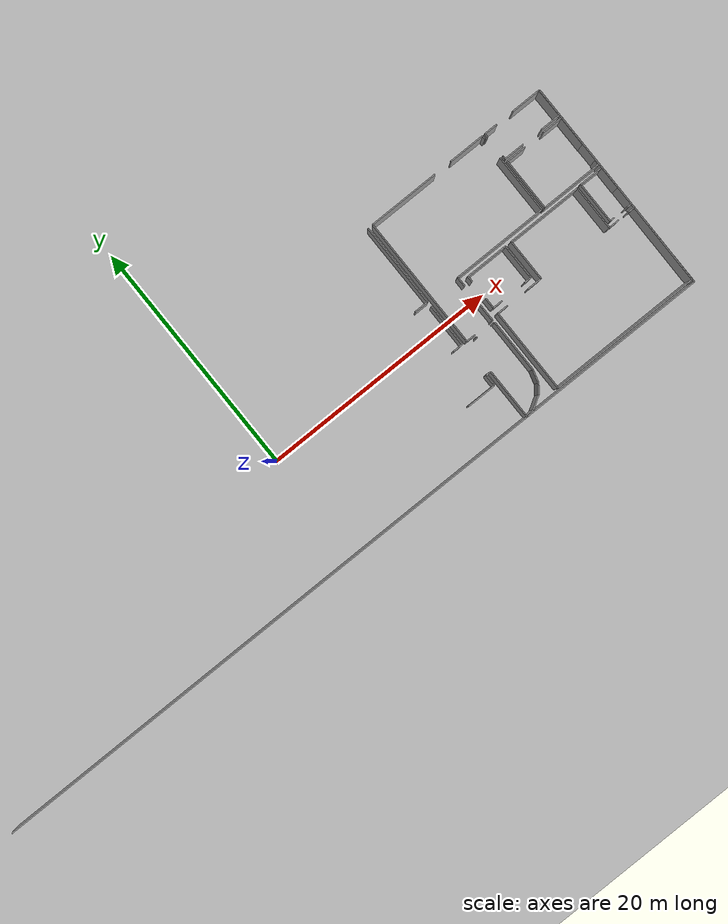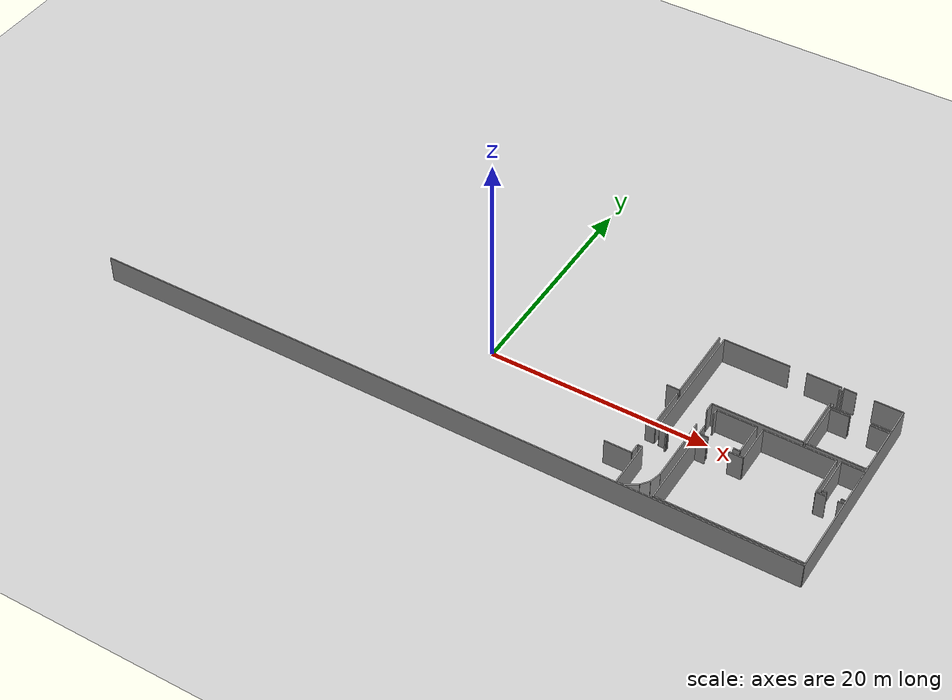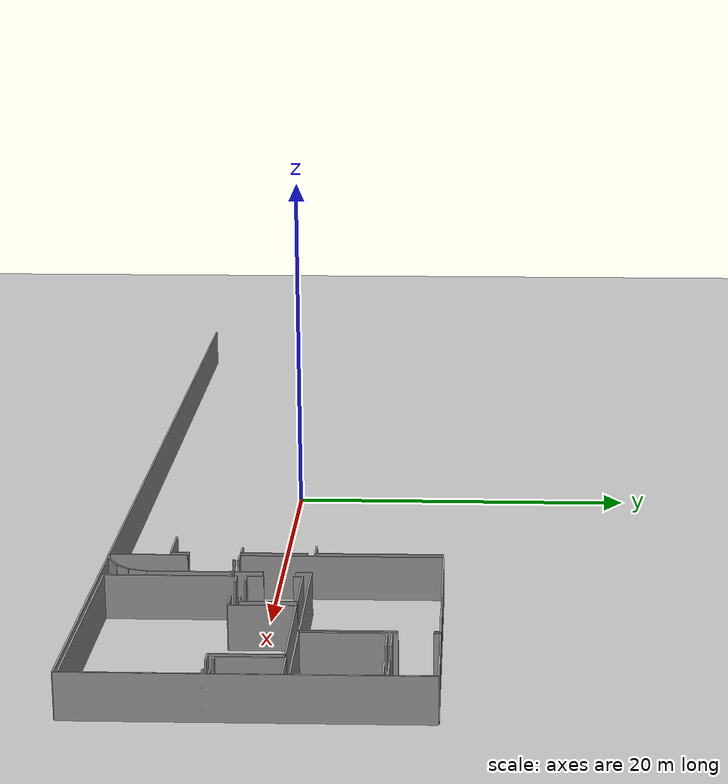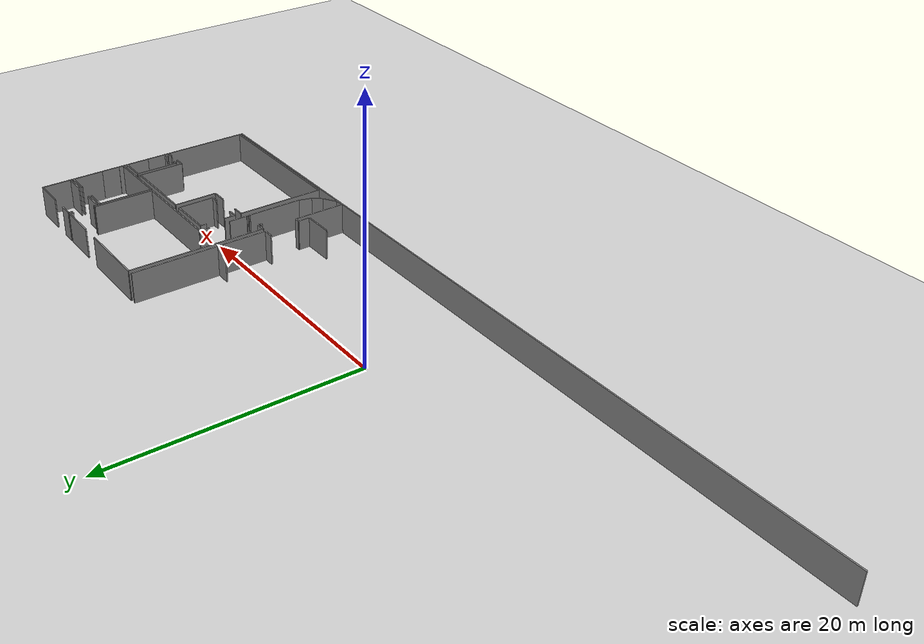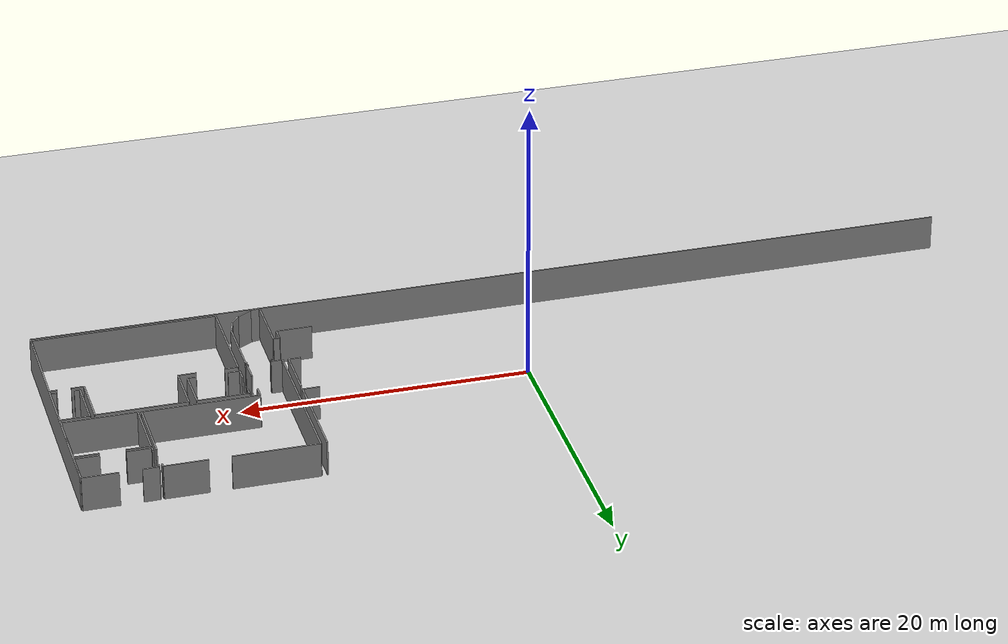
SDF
<sdf version="1.6">
 <world name="default">
  <model name="ground_plane">
   <static>1</static>
   <link name="link">
    <collision name="collision">
     <geometry><plane><normal>0 0 1</normal><size>100 100</size></plane></geometry>
     <surface><friction><ode><mu>100</mu><mu2>50</mu2></ode></friction></surface>
    </collision>
    <visual name="visual">
     <cast_shadows>0</cast_shadows>
     <geometry><plane><normal>0 0 1</normal><size>100 100</size></plane></geometry>
     <material>
      <script><uri>file://media/materials/scripts/gazebo.material</uri><name>Gazebo/Grey</name></script>
     </material>
    </visual>
   </link>
  </model>
  <model name="0510034839_A-40">
   <static>1</static>
   <link name="Wall_76">
    <collision name="Wall_76_Collision">
     <geometry><box><size>0.828065097621 0.1 2.5</size></box></geometry>
     <pose>0.414032548811 0 1.25 0 0 0</pose>
    </collision>
    <visual name="Wall_76_Visual">
     <pose>0.414032548811 0 1.25 0 0 0</pose>
     <geometry><box><size>0.828065097621 0.1 2.5</size></box></geometry>
     <material>
      <script><uri>file://media/materials/scripts/gazebo.material</uri><name>Gazebo/Grey</name></script>
      <ambient>1 1 1 1</ambient>
     </material>
    </visual>
    <pose>48.7299108843 -11.0799248483 0 0 0 3.14159265359</pose>
   </link>
   <link name="Wall_101">
    <collision name="Wall_101_Collision">
     <geometry><box><size>3.65323782427 0.1 2.5</size></box></geometry>
     <pose>1.82661891214 0 1.25 0 0 0</pose>
    </collision>
    <visual name="Wall_101_Visual">
     <pose>1.82661891214 0 1.25 0 0 0</pose>
     <geometry><box><size>3.65323782427 0.1 2.5</size></box></geometry>
     <material>
      <script><uri>file://media/materials/scripts/gazebo.material</uri><name>Gazebo/Grey</name></script>
      <ambient>1 1 1 1</ambient>
     </material>
    </visual>
    <pose>48.7337192475 -7.42668900906 0 0 0 -1.57183878941</pose>
   </link>
   <link name="Wall_139">
    <collision name="Wall_139_Collision">
     <geometry><box><size>1.16142382004 0.1 2.5</size></box></geometry>
     <pose>0.580711910021 0 1.25 0 0 0</pose>
    </collision>
    <visual name="Wall_139_Visual">
     <pose>0.580711910021 0 1.25 0 0 0</pose>
     <geometry><box><size>1.16142382004 0.1 2.5</size></box></geometry>
     <material>
      <script><uri>file://media/materials/scripts/gazebo.material</uri><name>Gazebo/Grey</name></script>
      <ambient>1 1 1 1</ambient>
     </material>
    </visual>
    <pose>48.7202630309 -7.01005407876 0 0 0 3.14159265359</pose>
   </link>
   <link name="Wall_143">
    <collision name="Wall_143_Collision">
     <geometry><box><size>7.00333039315 0.1 2.5</size></box></geometry>
     <pose>3.50166519658 0 1.25 0 0 0</pose>
    </collision>
    <visual name="Wall_143_Visual">
     <pose>3.50166519658 0 1.25 0 0 0</pose>
     <geometry><box><size>7.00333039315 0.1 2.5</size></box></geometry>
     <material>
      <script><uri>file://media/materials/scripts/gazebo.material</uri><name>Gazebo/Grey</name></script>
      <ambient>1 1 1 1</ambient>
     </material>
    </visual>
    <pose>48.7123924137 -0.00672810825908 0 0 0 -1.56967248736</pose>
   </link>
   <link name="Wall_184">
    <collision name="Wall_184_Collision">
     <geometry><box><size>4.30027674106 0.1 2.5</size></box></geometry>
     <pose>2.15013837053 0 1.25 0 0 0</pose>
    </collision>
    <visual name="Wall_184_Visual">
     <pose>2.15013837053 0 1.25 0 0 0</pose>
     <geometry><box><size>4.30027674106 0.1 2.5</size></box></geometry>
     <material>
      <script><uri>file://media/materials/scripts/gazebo.material</uri><name>Gazebo/Grey</name></script>
      <ambient>1 1 1 1</ambient>
     </material>
    </visual>
    <pose>49.1137938914 -18.2791276309 0 0 0 1.57079632679</pose>
   </link>
   <link name="Wall_185">
    <collision name="Wall_185_Collision">
     <geometry><box><size>0.422347475055 0.1 2.5</size></box></geometry>
     <pose>0.211173737528 0 1.25 0 0 0</pose>
    </collision>
    <visual name="Wall_185_Visual">
     <pose>0.211173737528 0 1.25 0 0 0</pose>
     <geometry><box><size>0.422347475055 0.1 2.5</size></box></geometry>
     <material>
      <script><uri>file://media/materials/scripts/gazebo.material</uri><name>Gazebo/Grey</name></script>
      <ambient>1 1 1 1</ambient>
     </material>
    </visual>
    <pose>49.1137938914 -13.9788508899 0 0 0 3.14159265359</pose>
   </link>
   <link name="Wall_186">
    <collision name="Wall_186_Collision">
     <geometry><box><size>0.9694823165 0.1 2.5</size></box></geometry>
     <pose>0.48474115825 0 1.25 0 0 0</pose>
    </collision>
    <visual name="Wall_186_Visual">
     <pose>0.48474115825 0 1.25 0 0 0</pose>
     <geometry><box><size>0.9694823165 0.1 2.5</size></box></geometry>
     <material>
      <script><uri>file://media/materials/scripts/gazebo.material</uri><name>Gazebo/Grey</name></script>
      <ambient>1 1 1 1</ambient>
     </material>
    </visual>
    <pose>48.6914464163 -13.9788508899 0 0 0 -1.57079632679</pose>
   </link>
   <link name="Wall_187">
    <collision name="Wall_187_Collision">
     <geometry><box><size>2.45728285983 0.1 2.5</size></box></geometry>
     <pose>1.22864142991 0 1.25 0 0 0</pose>
    </collision>
    <visual name="Wall_187_Visual">
     <pose>1.22864142991 0 1.25 0 0 0</pose>
     <geometry><box><size>2.45728285983 0.1 2.5</size></box></geometry>
     <material>
      <script><uri>file://media/materials/scripts/gazebo.material</uri><name>Gazebo/Grey</name></script>
      <ambient>1 1 1 1</ambient>
     </material>
    </visual>
    <pose>48.6914464163 -14.9483332064 0 0 0 3.14159265359</pose>
   </link>
   <link name="Wall_193">
    <collision name="Wall_193_Collision">
     <geometry><box><size>0.115266458476 0.1 2.5</size></box></geometry>
     <pose>0.0576332292381 0 1.25 0 0 0</pose>
    </collision>
    <visual name="Wall_193_Visual">
     <pose>0.0576332292381 0 1.25 0 0 0</pose>
     <geometry><box><size>0.115266458476 0.1 2.5</size></box></geometry>
     <material>
      <script><uri>file://media/materials/scripts/gazebo.material</uri><name>Gazebo/Grey</name></script>
      <ambient>1 1 1 1</ambient>
     </material>
    </visual>
    <pose>49.8381445655 -11.4366415315 0 0 0 1.57079632679</pose>
   </link>
   <link name="Wall_194">
    <collision name="Wall_194_Collision">
     <geometry><box><size>0.115266458476 0.1 2.5</size></box></geometry>
     <pose>0.0576332292381 0 1.25 0 0 0</pose>
    </collision>
    <visual name="Wall_194_Visual">
     <pose>0.0576332292381 0 1.25 0 0 0</pose>
     <geometry><box><size>0.115266458476 0.1 2.5</size></box></geometry>
     <material>
      <script><uri>file://media/materials/scripts/gazebo.material</uri><name>Gazebo/Grey</name></script>
      <ambient>1 1 1 1</ambient>
     </material>
    </visual>
    <pose>49.8381445655 -11.321375073 0 0 0 0.0</pose>
   </link>
   <link name="Wall_195">
    <collision name="Wall_195_Collision">
     <geometry><box><size>0.12148678498 0.1 2.5</size></box></geometry>
     <pose>0.0607433924899 0 1.25 0 0 0</pose>
    </collision>
    <visual name="Wall_195_Visual">
     <pose>0.0607433924899 0 1.25 0 0 0</pose>
     <geometry><box><size>0.12148678498 0.1 2.5</size></box></geometry>
     <material>
      <script><uri>file://media/materials/scripts/gazebo.material</uri><name>Gazebo/Grey</name></script>
      <ambient>1 1 1 1</ambient>
     </material>
    </visual>
    <pose>51.515474649 -11.321375073 0 0 0 0.0</pose>
   </link>
   <link name="Wall_196">
    <collision name="Wall_196_Collision">
     <geometry><box><size>4.48599791809 0.1 2.5</size></box></geometry>
     <pose>2.24299895905 0 1.25 0 0 0</pose>
    </collision>
    <visual name="Wall_196_Visual">
     <pose>2.24299895905 0 1.25 0 0 0</pose>
     <geometry><box><size>4.48599791809 0.1 2.5</size></box></geometry>
     <material>
      <script><uri>file://media/materials/scripts/gazebo.material</uri><name>Gazebo/Grey</name></script>
      <ambient>1 1 1 1</ambient>
     </material>
    </visual>
    <pose>51.636961434 -11.321375073 0 0 0 -1.57079632679</pose>
   </link>
   <link name="Wall_197">
    <collision name="Wall_197_Collision">
     <geometry><box><size>1.06597658014 0.1 2.5</size></box></geometry>
     <pose>0.53298829007 0 1.25 0 0 0</pose>
    </collision>
    <visual name="Wall_197_Visual">
     <pose>0.53298829007 0 1.25 0 0 0</pose>
     <geometry><box><size>1.06597658014 0.1 2.5</size></box></geometry>
     <material>
      <script><uri>file://media/materials/scripts/gazebo.material</uri><name>Gazebo/Grey</name></script>
      <ambient>1 1 1 1</ambient>
     </material>
    </visual>
    <pose>51.636961434 -15.8073729911 0 0 0 -1.84341971233</pose>
   </link>
   <link name="Wall_198">
    <collision name="Wall_198_Collision">
     <geometry><box><size>0.896611060383 0.1 2.5</size></box></geometry>
     <pose>0.448305530191 0 1.25 0 0 0</pose>
    </collision>
    <visual name="Wall_198_Visual">
     <pose>0.448305530191 0 1.25 0 0 0</pose>
     <geometry><box><size>0.896611060383 0.1 2.5</size></box></geometry>
     <material>
      <script><uri>file://media/materials/scripts/gazebo.material</uri><name>Gazebo/Grey</name></script>
      <ambient>1 1 1 1</ambient>
     </material>
    </visual>
    <pose>51.3499377967 -16.8339807551 0 0 0 -2.23395050704</pose>
   </link>
   <link name="Wall_199">
    <collision name="Wall_199_Collision">
     <geometry><box><size>1.20405259335 0.1 2.5</size></box></geometry>
     <pose>0.602026296676 0 1.25 0 0 0</pose>
    </collision>
    <visual name="Wall_199_Visual">
     <pose>0.602026296676 0 1.25 0 0 0</pose>
     <geometry><box><size>1.20405259335 0.1 2.5</size></box></geometry>
     <material>
      <script><uri>file://media/materials/scripts/gazebo.material</uri><name>Gazebo/Grey</name></script>
      <ambient>1 1 1 1</ambient>
     </material>
    </visual>
    <pose>50.7979790286 -17.5405590677 0 0 0 -2.59178876614</pose>
   </link>
   <link name="Wall_200">
    <collision name="Wall_200_Collision">
     <geometry><box><size>0.666620029097 0.1 2.5</size></box></geometry>
     <pose>0.333310014548 0 1.25 0 0 0</pose>
    </collision>
    <visual name="Wall_200_Visual">
     <pose>0.333310014548 0 1.25 0 0 0</pose>
     <geometry><box><size>0.666620029097 0.1 2.5</size></box></geometry>
     <material>
      <script><uri>file://media/materials/scripts/gazebo.material</uri><name>Gazebo/Grey</name></script>
      <ambient>1 1 1 1</ambient>
     </material>
    </visual>
    <pose>49.7713712646 -18.1697006627 0 0 0 -2.97669443012</pose>
   </link>
   <link name="Wall_201">
    <collision name="Wall_201_Collision">
     <geometry><box><size>0.114250894965 0.1 2.5</size></box></geometry>
     <pose>0.0571254474827 0 1.25 0 0 0</pose>
    </collision>
    <visual name="Wall_201_Visual">
     <pose>0.0571254474827 0 1.25 0 0 0</pose>
     <geometry><box><size>0.114250894965 0.1 2.5</size></box></geometry>
     <material>
      <script><uri>file://media/materials/scripts/gazebo.material</uri><name>Gazebo/Grey</name></script>
      <ambient>1 1 1 1</ambient>
     </material>
    </visual>
    <pose>51.6137304187 -11.1176276436 0 0 0 3.14159265359</pose>
   </link>
   <link name="Wall_202">
    <collision name="Wall_202_Collision">
     <geometry><box><size>0.792901211059 0.1 2.5</size></box></geometry>
     <pose>0.39645060553 0 1.25 0 0 0</pose>
    </collision>
    <visual name="Wall_202_Visual">
     <pose>0.39645060553 0 1.25 0 0 0</pose>
     <geometry><box><size>0.792901211059 0.1 2.5</size></box></geometry>
     <material>
      <script><uri>file://media/materials/scripts/gazebo.material</uri><name>Gazebo/Grey</name></script>
      <ambient>1 1 1 1</ambient>
     </material>
    </visual>
    <pose>49.9393200802 -11.1176276436 0 0 0 3.14159265359</pose>
   </link>
   <link name="Wall_203">
    <collision name="Wall_203_Collision">
     <geometry><box><size>11.1176276436 0.1 2.5</size></box></geometry>
     <pose>5.55881382182 0 1.25 0 0 0</pose>
    </collision>
    <visual name="Wall_203_Visual">
     <pose>5.55881382182 0 1.25 0 0 0</pose>
     <geometry><box><size>11.1176276436 0.1 2.5</size></box></geometry>
     <material>
      <script><uri>file://media/materials/scripts/gazebo.material</uri><name>Gazebo/Grey</name></script>
      <ambient>1 1 1 1</ambient>
     </material>
    </visual>
    <pose>49.1464188692 -11.1176276436 0 0 0 1.57079632679</pose>
   </link>
   <link name="Wall_204">
    <collision name="Wall_204_Collision">
     <geometry><box><size>5.93152563028 0.1 2.5</size></box></geometry>
     <pose>2.96576281514 0 1.25 0 0 0</pose>
    </collision>
    <visual name="Wall_204_Visual">
     <pose>2.96576281514 0 1.25 0 0 0</pose>
     <geometry><box><size>5.93152563028 0.1 2.5</size></box></geometry>
     <material>
      <script><uri>file://media/materials/scripts/gazebo.material</uri><name>Gazebo/Grey</name></script>
      <ambient>1 1 1 1</ambient>
     </material>
    </visual>
    <pose>49.1464188692 -0.0 0 0 0 0.0</pose>
   </link>
   <link name="Wall_205">
    <collision name="Wall_205_Collision">
     <geometry><box><size>3.01622362709 0.1 2.5</size></box></geometry>
     <pose>1.50811181354 0 1.25 0 0 0</pose>
    </collision>
    <visual name="Wall_205_Visual">
     <pose>1.50811181354 0 1.25 0 0 0</pose>
     <geometry><box><size>3.01622362709 0.1 2.5</size></box></geometry>
     <material>
      <script><uri>file://media/materials/scripts/gazebo.material</uri><name>Gazebo/Grey</name></script>
      <ambient>1 1 1 1</ambient>
     </material>
    </visual>
    <pose>56.6002742021 -0.0 0 0 0 0.0</pose>
   </link>
   <link name="Wall_206">
    <collision name="Wall_206_Collision">
     <geometry><box><size>0.320918069414 0.1 2.5</size></box></geometry>
     <pose>0.160459034707 0 1.25 0 0 0</pose>
    </collision>
    <visual name="Wall_206_Visual">
     <pose>0.160459034707 0 1.25 0 0 0</pose>
     <geometry><box><size>0.320918069414 0.1 2.5</size></box></geometry>
     <material>
      <script><uri>file://media/materials/scripts/gazebo.material</uri><name>Gazebo/Grey</name></script>
      <ambient>1 1 1 1</ambient>
     </material>
    </visual>
    <pose>59.6164978292 -0.0 0 0 0 -1.57079632679</pose>
   </link>
   <link name="Wall_207">
    <collision name="Wall_207_Collision">
     <geometry><box><size>4.93043389951 0.1 2.5</size></box></geometry>
     <pose>2.46521694975 0 1.25 0 0 0</pose>
    </collision>
    <visual name="Wall_207_Visual">
     <pose>2.46521694975 0 1.25 0 0 0</pose>
     <geometry><box><size>4.93043389951 0.1 2.5</size></box></geometry>
     <material>
      <script><uri>file://media/materials/scripts/gazebo.material</uri><name>Gazebo/Grey</name></script>
      <ambient>1 1 1 1</ambient>
     </material>
    </visual>
    <pose>59.6164978292 -2.07962017925 0 0 0 -1.57079632679</pose>
   </link>
   <link name="Wall_208">
    <collision name="Wall_208_Collision">
     <geometry><box><size>8.0166044634 0.1 2.5</size></box></geometry>
     <pose>4.0083022317 0 1.25 0 0 0</pose>
    </collision>
    <visual name="Wall_208_Visual">
     <pose>4.0083022317 0 1.25 0 0 0</pose>
     <geometry><box><size>8.0166044634 0.1 2.5</size></box></geometry>
     <material>
      <script><uri>file://media/materials/scripts/gazebo.material</uri><name>Gazebo/Grey</name></script>
      <ambient>1 1 1 1</ambient>
     </material>
    </visual>
    <pose>59.6164978292 -7.01005407876 0 0 0 3.14159265359</pose>
   </link>
   <link name="Wall_209">
    <collision name="Wall_209_Collision">
     <geometry><box><size>0.835047096758 0.1 2.5</size></box></geometry>
     <pose>0.417523548379 0 1.25 0 0 0</pose>
    </collision>
    <visual name="Wall_209_Visual">
     <pose>0.417523548379 0 1.25 0 0 0</pose>
     <geometry><box><size>0.835047096758 0.1 2.5</size></box></geometry>
     <material>
      <script><uri>file://media/materials/scripts/gazebo.material</uri><name>Gazebo/Grey</name></script>
      <ambient>1 1 1 1</ambient>
     </material>
    </visual>
    <pose>51.5998933658 -7.01005407876 0 0 0 -1.57079632679</pose>
   </link>
   <link name="Wall_210">
    <collision name="Wall_210_Collision">
     <geometry><box><size>1.52340810819 0.1 2.5</size></box></geometry>
     <pose>0.761704054095 0 1.25 0 0 0</pose>
    </collision>
    <visual name="Wall_210_Visual">
     <pose>0.761704054095 0 1.25 0 0 0</pose>
     <geometry><box><size>1.52340810819 0.1 2.5</size></box></geometry>
     <material>
      <script><uri>file://media/materials/scripts/gazebo.material</uri><name>Gazebo/Grey</name></script>
      <ambient>1 1 1 1</ambient>
     </material>
    </visual>
    <pose>51.5998933658 -9.59428237743 0 0 0 -1.56171324326</pose>
   </link>
   <link name="Wall_211">
    <collision name="Wall_211_Collision">
     <geometry><box><size>1.71109757026 0.1 2.5</size></box></geometry>
     <pose>0.855548785132 0 1.25 0 0 0</pose>
    </collision>
    <visual name="Wall_211_Visual">
     <pose>0.855548785132 0 1.25 0 0 0</pose>
     <geometry><box><size>1.71109757026 0.1 2.5</size></box></geometry>
     <material>
      <script><uri>file://media/materials/scripts/gazebo.material</uri><name>Gazebo/Grey</name></script>
      <ambient>1 1 1 1</ambient>
     </material>
    </visual>
    <pose>65.0220885064 -2.3892401046 0 0 0 3.14159265359</pose>
   </link>
   <link name="Wall_212">
    <collision name="Wall_212_Collision">
     <geometry><box><size>1.7027191713 0.1 2.5</size></box></geometry>
     <pose>0.85135958565 0 1.25 0 0 0</pose>
    </collision>
    <visual name="Wall_212_Visual">
     <pose>0.85135958565 0 1.25 0 0 0</pose>
     <geometry><box><size>1.7027191713 0.1 2.5</size></box></geometry>
     <material>
      <script><uri>file://media/materials/scripts/gazebo.material</uri><name>Gazebo/Grey</name></script>
      <ambient>1 1 1 1</ambient>
     </material>
    </visual>
    <pose>61.5581283164 -2.3892401046 0 0 0 3.14159265359</pose>
   </link>
   <link name="Wall_213">
    <collision name="Wall_213_Collision">
     <geometry><box><size>0.300479853759 0.1 2.5</size></box></geometry>
     <pose>0.150239926879 0 1.25 0 0 0</pose>
    </collision>
    <visual name="Wall_213_Visual">
     <pose>0.150239926879 0 1.25 0 0 0</pose>
     <geometry><box><size>0.300479853759 0.1 2.5</size></box></geometry>
     <material>
      <script><uri>file://media/materials/scripts/gazebo.material</uri><name>Gazebo/Grey</name></script>
      <ambient>1 1 1 1</ambient>
     </material>
    </visual>
    <pose>59.8554091451 -2.3892401046 0 0 0 1.57079632679</pose>
   </link>
   <link name="Wall_214">
    <collision name="Wall_214_Collision">
     <geometry><box><size>0.325488105212 0.1 2.5</size></box></geometry>
     <pose>0.162744052606 0 1.25 0 0 0</pose>
    </collision>
    <visual name="Wall_214_Visual">
     <pose>0.162744052606 0 1.25 0 0 0</pose>
     <geometry><box><size>0.325488105212 0.1 2.5</size></box></geometry>
     <material>
      <script><uri>file://media/materials/scripts/gazebo.material</uri><name>Gazebo/Grey</name></script>
      <ambient>1 1 1 1</ambient>
     </material>
    </visual>
    <pose>59.8554091451 -0.327519232234 0 0 0 1.57079632679</pose>
   </link>
   <link name="Wall_215">
    <collision name="Wall_215_Collision">
     <geometry><box><size>1.11851626171 0.1 2.5</size></box></geometry>
     <pose>0.559258130855 0 1.25 0 0 0</pose>
    </collision>
    <visual name="Wall_215_Visual">
     <pose>0.559258130855 0 1.25 0 0 0</pose>
     <geometry><box><size>1.11851626171 0.1 2.5</size></box></geometry>
     <material>
      <script><uri>file://media/materials/scripts/gazebo.material</uri><name>Gazebo/Grey</name></script>
      <ambient>1 1 1 1</ambient>
     </material>
    </visual>
    <pose>59.8554091451 -0.00203112702161 0 0 0 0.0</pose>
   </link>
   <link name="Wall_216">
    <collision name="Wall_216_Collision">
     <geometry><box><size>2.50450656308 0.1 2.5</size></box></geometry>
     <pose>1.25225328154 0 1.25 0 0 0</pose>
    </collision>
    <visual name="Wall_216_Visual">
     <pose>1.25225328154 0 1.25 0 0 0</pose>
     <geometry><box><size>2.50450656308 0.1 2.5</size></box></geometry>
     <material>
      <script><uri>file://media/materials/scripts/gazebo.material</uri><name>Gazebo/Grey</name></script>
      <ambient>1 1 1 1</ambient>
     </material>
    </visual>
    <pose>62.5013329271 -0.00203112702161 0 0 0 0.0</pose>
   </link>
   <link name="Wall_217">
    <collision name="Wall_217_Collision">
     <geometry><box><size>2.38726427803 0.1 2.5</size></box></geometry>
     <pose>1.19363213902 0 1.25 0 0 0</pose>
    </collision>
    <visual name="Wall_217_Visual">
     <pose>1.19363213902 0 1.25 0 0 0</pose>
     <geometry><box><size>2.38726427803 0.1 2.5</size></box></geometry>
     <material>
      <script><uri>file://media/materials/scripts/gazebo.material</uri><name>Gazebo/Grey</name></script>
      <ambient>1 1 1 1</ambient>
     </material>
    </visual>
    <pose>65.0058394902 -0.00203112702161 0 0 0 -1.56398973157</pose>
   </link>
   <link name="Wall_218">
    <collision name="Wall_218_Collision">
     <geometry><box><size>5.1241526392 0.1 2.5</size></box></geometry>
     <pose>2.5620763196 0 1.25 0 0 0</pose>
    </collision>
    <visual name="Wall_218_Visual">
     <pose>2.5620763196 0 1.25 0 0 0</pose>
     <geometry><box><size>5.1241526392 0.1 2.5</size></box></geometry>
     <material>
      <script><uri>file://media/materials/scripts/gazebo.material</uri><name>Gazebo/Grey</name></script>
      <ambient>1 1 1 1</ambient>
     </material>
    </visual>
    <pose>64.9861629472 -7.04331378374 0 0 0 3.14159265359</pose>
   </link>
   <link name="Wall_219">
    <collision name="Wall_219_Collision">
     <geometry><box><size>4.40881509127 0.1 2.5</size></box></geometry>
     <pose>2.20440754564 0 1.25 0 0 0</pose>
    </collision>
    <visual name="Wall_219_Visual">
     <pose>2.20440754564 0 1.25 0 0 0</pose>
     <geometry><box><size>4.40881509127 0.1 2.5</size></box></geometry>
     <material>
      <script><uri>file://media/materials/scripts/gazebo.material</uri><name>Gazebo/Grey</name></script>
      <ambient>1 1 1 1</ambient>
     </material>
    </visual>
    <pose>59.862010308 -7.04331378374 0 0 0 1.57079632679</pose>
   </link>
   <link name="Wall_220">
    <collision name="Wall_220_Collision">
     <geometry><box><size>1.68786655495 0.1 2.5</size></box></geometry>
     <pose>0.843933277477 0 1.25 0 0 0</pose>
    </collision>
    <visual name="Wall_220_Visual">
     <pose>0.843933277477 0 1.25 0 0 0</pose>
     <geometry><box><size>1.68786655495 0.1 2.5</size></box></geometry>
     <material>
      <script><uri>file://media/materials/scripts/gazebo.material</uri><name>Gazebo/Grey</name></script>
      <ambient>1 1 1 1</ambient>
     </material>
    </visual>
    <pose>59.862010308 -2.63449869246 0 0 0 0.0</pose>
   </link>
   <link name="Wall_221">
    <collision name="Wall_221_Collision">
     <geometry><box><size>1.71947596923 0.1 2.5</size></box></geometry>
     <pose>0.859737984614 0 1.25 0 0 0</pose>
    </collision>
    <visual name="Wall_221_Visual">
     <pose>0.859737984614 0 1.25 0 0 0</pose>
     <geometry><box><size>1.71947596923 0.1 2.5</size></box></geometry>
     <material>
      <script><uri>file://media/materials/scripts/gazebo.material</uri><name>Gazebo/Grey</name></script>
      <ambient>1 1 1 1</ambient>
     </material>
    </visual>
    <pose>63.2943610836 -2.63449869246 0 0 0 0.0</pose>
   </link>
   <link name="Wall_222">
    <collision name="Wall_222_Collision">
     <geometry><box><size>2.50374489045 0.1 2.5</size></box></geometry>
     <pose>1.25187244522 0 1.25 0 0 0</pose>
    </collision>
    <visual name="Wall_222_Visual">
     <pose>1.25187244522 0 1.25 0 0 0</pose>
     <geometry><box><size>2.50374489045 0.1 2.5</size></box></geometry>
     <material>
      <script><uri>file://media/materials/scripts/gazebo.material</uri><name>Gazebo/Grey</name></script>
      <ambient>1 1 1 1</ambient>
     </material>
    </visual>
    <pose>65.0138370528 -2.63449869246 0 0 0 -1.57079632679</pose>
   </link>
   <link name="Wall_223">
    <collision name="Wall_223_Collision">
     <geometry><box><size>0.398934984223 0.1 2.5</size></box></geometry>
     <pose>0.199467492111 0 1.25 0 0 0</pose>
    </collision>
    <visual name="Wall_223_Visual">
     <pose>0.199467492111 0 1.25 0 0 0</pose>
     <geometry><box><size>0.398934984223 0.1 2.5</size></box></geometry>
     <material>
      <script><uri>file://media/materials/scripts/gazebo.material</uri><name>Gazebo/Grey</name></script>
      <ambient>1 1 1 1</ambient>
     </material>
    </visual>
    <pose>65.0138370528 -6.64533983294 0 0 0 -1.64022204899</pose>
   </link>
   <link name="Wall_224">
    <collision name="Wall_224_Collision">
     <geometry><box><size>0.595120217331 0.1 2.5</size></box></geometry>
     <pose>0.297560108665 0 1.25 0 0 0</pose>
    </collision>
    <visual name="Wall_224_Visual">
     <pose>0.297560108665 0 1.25 0 0 0</pose>
     <geometry><box><size>0.595120217331 0.1 2.5</size></box></geometry>
     <material>
      <script><uri>file://media/materials/scripts/gazebo.material</uri><name>Gazebo/Grey</name></script>
      <ambient>1 1 1 1</ambient>
     </material>
    </visual>
    <pose>55.8151166629 -10.4265366745 0 0 0 3.14159265359</pose>
   </link>
   <link name="Wall_225">
    <collision name="Wall_225_Collision">
     <geometry><box><size>0.812450808642 0.1 2.5</size></box></geometry>
     <pose>0.406225404321 0 1.25 0 0 0</pose>
    </collision>
    <visual name="Wall_225_Visual">
     <pose>0.406225404321 0 1.25 0 0 0</pose>
     <geometry><box><size>0.812450808642 0.1 2.5</size></box></geometry>
     <material>
      <script><uri>file://media/materials/scripts/gazebo.material</uri><name>Gazebo/Grey</name></script>
      <ambient>1 1 1 1</ambient>
     </material>
    </visual>
    <pose>53.0482138777 -10.4265366745 0 0 0 3.14159265359</pose>
   </link>
   <link name="Wall_226">
    <collision name="Wall_226_Collision">
     <geometry><box><size>0.921116104298 0.1 2.5</size></box></geometry>
     <pose>0.460558052149 0 1.25 0 0 0</pose>
    </collision>
    <visual name="Wall_226_Visual">
     <pose>0.460558052149 0 1.25 0 0 0</pose>
     <geometry><box><size>0.921116104298 0.1 2.5</size></box></geometry>
     <material>
      <script><uri>file://media/materials/scripts/gazebo.material</uri><name>Gazebo/Grey</name></script>
      <ambient>1 1 1 1</ambient>
     </material>
    </visual>
    <pose>52.235763069 -10.4265366745 0 0 0 1.57079632679</pose>
   </link>
   <link name="Wall_227">
    <collision name="Wall_227_Collision">
     <geometry><box><size>0.500799756265 0.1 2.5</size></box></geometry>
     <pose>0.250399878132 0 1.25 0 0 0</pose>
    </collision>
    <visual name="Wall_227_Visual">
     <pose>0.250399878132 0 1.25 0 0 0</pose>
     <geometry><box><size>0.500799756265 0.1 2.5</size></box></geometry>
     <material>
      <script><uri>file://media/materials/scripts/gazebo.material</uri><name>Gazebo/Grey</name></script>
      <ambient>1 1 1 1</ambient>
     </material>
    </visual>
    <pose>52.235763069 -7.93155101937 0 0 0 1.57079632679</pose>
   </link>
   <link name="Wall_228">
    <collision name="Wall_228_Collision">
     <geometry><box><size>3.56310457765 0.1 2.5</size></box></geometry>
     <pose>1.78155228883 0 1.25 0 0 0</pose>
    </collision>
    <visual name="Wall_228_Visual">
     <pose>1.78155228883 0 1.25 0 0 0</pose>
     <geometry><box><size>3.56310457765 0.1 2.5</size></box></geometry>
     <material>
      <script><uri>file://media/materials/scripts/gazebo.material</uri><name>Gazebo/Grey</name></script>
      <ambient>1 1 1 1</ambient>
     </material>
    </visual>
    <pose>52.235763069 -7.43075126311 0 0 0 0.0</pose>
   </link>
   <link name="Wall_229">
    <collision name="Wall_229_Collision">
     <geometry><box><size>2.9958294781 0.1 2.5</size></box></geometry>
     <pose>1.49791473905 0 1.25 0 0 0</pose>
    </collision>
    <visual name="Wall_229_Visual">
     <pose>1.49791473905 0 1.25 0 0 0</pose>
     <geometry><box><size>2.9958294781 0.1 2.5</size></box></geometry>
     <material>
      <script><uri>file://media/materials/scripts/gazebo.material</uri><name>Gazebo/Grey</name></script>
      <ambient>1 1 1 1</ambient>
     </material>
    </visual>
    <pose>55.7988676467 -7.43075126311 0 0 0 -1.56537242134</pose>
   </link>
   <link name="Wall_230">
    <collision name="Wall_230_Collision">
     <geometry><box><size>12.7834056922 0.1 2.5</size></box></geometry>
     <pose>6.39170284612 0 1.25 0 0 0</pose>
    </collision>
    <visual name="Wall_230_Visual">
     <pose>6.39170284612 0 1.25 0 0 0</pose>
     <geometry><box><size>12.7834056922 0.1 2.5</size></box></geometry>
     <material>
      <script><uri>file://media/materials/scripts/gazebo.material</uri><name>Gazebo/Grey</name></script>
      <ambient>1 1 1 1</ambient>
     </material>
    </visual>
    <pose>65.0191687613 -18.0488486049 0 0 0 3.14159265359</pose>
   </link>
   <link name="Wall_231">
    <collision name="Wall_231_Collision">
     <geometry><box><size>7.09625003174 0.1 2.5</size></box></geometry>
     <pose>3.54812501587 0 1.25 0 0 0</pose>
    </collision>
    <visual name="Wall_231_Visual">
     <pose>3.54812501587 0 1.25 0 0 0</pose>
     <geometry><box><size>7.09625003174 0.1 2.5</size></box></geometry>
     <material>
      <script><uri>file://media/materials/scripts/gazebo.material</uri><name>Gazebo/Grey</name></script>
      <ambient>1 1 1 1</ambient>
     </material>
    </visual>
    <pose>52.235763069 -18.0488486049 0 0 0 1.57079632679</pose>
   </link>
   <link name="Wall_232">
    <collision name="Wall_232_Collision">
     <geometry><box><size>0.926701703608 0.1 2.5</size></box></geometry>
     <pose>0.463350851804 0 1.25 0 0 0</pose>
    </collision>
    <visual name="Wall_232_Visual">
     <pose>0.463350851804 0 1.25 0 0 0</pose>
     <geometry><box><size>0.926701703608 0.1 2.5</size></box></geometry>
     <material>
      <script><uri>file://media/materials/scripts/gazebo.material</uri><name>Gazebo/Grey</name></script>
      <ambient>1 1 1 1</ambient>
     </material>
    </visual>
    <pose>52.235763069 -10.9525985731 0 0 0 0.0</pose>
   </link>
   <link name="Wall_233">
    <collision name="Wall_233_Collision">
     <geometry><box><size>1.24736588214 0.1 2.5</size></box></geometry>
     <pose>0.623682941072 0 1.25 0 0 0</pose>
    </collision>
    <visual name="Wall_233_Visual">
     <pose>0.623682941072 0 1.25 0 0 0</pose>
     <geometry><box><size>1.24736588214 0.1 2.5</size></box></geometry>
     <material>
      <script><uri>file://media/materials/scripts/gazebo.material</uri><name>Gazebo/Grey</name></script>
      <ambient>1 1 1 1</ambient>
     </material>
    </visual>
    <pose>55.1030796963 -10.9525985731 0 0 0 0.0</pose>
   </link>
   <link name="Wall_234">
    <collision name="Wall_234_Collision">
     <geometry><box><size>3.51258029299 0.1 2.5</size></box></geometry>
     <pose>1.7562901465 0 1.25 0 0 0</pose>
    </collision>
    <visual name="Wall_234_Visual">
     <pose>1.7562901465 0 1.25 0 0 0</pose>
     <geometry><box><size>3.51258029299 0.1 2.5</size></box></geometry>
     <material>
      <script><uri>file://media/materials/scripts/gazebo.material</uri><name>Gazebo/Grey</name></script>
      <ambient>1 1 1 1</ambient>
     </material>
    </visual>
    <pose>56.3504455785 -10.9525985731 0 0 0 1.57079632679</pose>
   </link>
   <link name="Wall_235">
    <collision name="Wall_235_Collision">
     <geometry><box><size>6.31413918298 0.1 2.5</size></box></geometry>
     <pose>3.15706959149 0 1.25 0 0 0</pose>
    </collision>
    <visual name="Wall_235_Visual">
     <pose>3.15706959149 0 1.25 0 0 0</pose>
     <geometry><box><size>6.31413918298 0.1 2.5</size></box></geometry>
     <material>
      <script><uri>file://media/materials/scripts/gazebo.material</uri><name>Gazebo/Grey</name></script>
      <ambient>1 1 1 1</ambient>
     </material>
    </visual>
    <pose>56.3504455785 -7.44001828014 0 0 0 0.0</pose>
   </link>
   <link name="Wall_236">
    <collision name="Wall_236_Collision">
     <geometry><box><size>3.76647117069 0.1 2.5</size></box></geometry>
     <pose>1.88323558535 0 1.25 0 0 0</pose>
    </collision>
    <visual name="Wall_236_Visual">
     <pose>1.88323558535 0 1.25 0 0 0</pose>
     <geometry><box><size>3.76647117069 0.1 2.5</size></box></geometry>
     <material>
      <script><uri>file://media/materials/scripts/gazebo.material</uri><name>Gazebo/Grey</name></script>
      <ambient>1 1 1 1</ambient>
     </material>
    </visual>
    <pose>62.6645847615 -7.44001828014 0 0 0 -1.57079632679</pose>
   </link>
   <link name="Wall_237">
    <collision name="Wall_237_Collision">
     <geometry><box><size>0.882016909132 0.1 2.5</size></box></geometry>
     <pose>0.441008454566 0 1.25 0 0 0</pose>
    </collision>
    <visual name="Wall_237_Visual">
     <pose>0.441008454566 0 1.25 0 0 0</pose>
     <geometry><box><size>0.882016909132 0.1 2.5</size></box></geometry>
     <material>
      <script><uri>file://media/materials/scripts/gazebo.material</uri><name>Gazebo/Grey</name></script>
      <ambient>1 1 1 1</ambient>
     </material>
    </visual>
    <pose>62.6645847615 -11.2064894508 0 0 0 0.0</pose>
   </link>
   <link name="Wall_238">
    <collision name="Wall_238_Collision">
     <geometry><box><size>0.540914514941 0.1 2.5</size></box></geometry>
     <pose>0.270457257471 0 1.25 0 0 0</pose>
    </collision>
    <visual name="Wall_238_Visual">
     <pose>0.270457257471 0 1.25 0 0 0</pose>
     <geometry><box><size>0.540914514941 0.1 2.5</size></box></geometry>
     <material>
      <script><uri>file://media/materials/scripts/gazebo.material</uri><name>Gazebo/Grey</name></script>
      <ambient>1 1 1 1</ambient>
     </material>
    </visual>
    <pose>64.4970421713 -11.2064894508 0 0 0 0.0</pose>
   </link>
   <link name="Wall_239">
    <collision name="Wall_239_Collision">
     <geometry><box><size>6.84238494817 0.1 2.5</size></box></geometry>
     <pose>3.42119247408 0 1.25 0 0 0</pose>
    </collision>
    <visual name="Wall_239_Visual">
     <pose>3.42119247408 0 1.25 0 0 0</pose>
     <geometry><box><size>6.84238494817 0.1 2.5</size></box></geometry>
     <material>
      <script><uri>file://media/materials/scripts/gazebo.material</uri><name>Gazebo/Grey</name></script>
      <ambient>1 1 1 1</ambient>
     </material>
    </visual>
    <pose>65.0379566862 -11.2064894508 0 0 0 -1.5735421455</pose>
   </link>
   <link name="Wall_240">
    <collision name="Wall_240_Collision">
     <geometry><box><size>1.90062711047 0.1 2.5</size></box></geometry>
     <pose>0.950313555234 0 1.25 0 0 0</pose>
    </collision>
    <visual name="Wall_240_Visual">
     <pose>0.950313555234 0 1.25 0 0 0</pose>
     <geometry><box><size>1.90062711047 0.1 2.5</size></box></geometry>
     <material>
      <script><uri>file://media/materials/scripts/gazebo.material</uri><name>Gazebo/Grey</name></script>
      <ambient>1 1 1 1</ambient>
     </material>
    </visual>
    <pose>65.0288166146 -9.28504328839 0 0 0 1.57079632679</pose>
   </link>
   <link name="Wall_241">
    <collision name="Wall_241_Collision">
     <geometry><box><size>2.01576662351 0.1 2.5</size></box></geometry>
     <pose>1.00788331175 0 1.25 0 0 0</pose>
    </collision>
    <visual name="Wall_241_Visual">
     <pose>1.00788331175 0 1.25 0 0 0</pose>
     <geometry><box><size>2.01576662351 0.1 2.5</size></box></geometry>
     <material>
      <script><uri>file://media/materials/scripts/gazebo.material</uri><name>Gazebo/Grey</name></script>
      <ambient>1 1 1 1</ambient>
     </material>
    </visual>
    <pose>65.0288166146 -7.38441617793 0 0 0 3.14159265359</pose>
   </link>
   <link name="Wall_242">
    <collision name="Wall_242_Collision">
     <geometry><box><size>3.47475055221 0.1 2.5</size></box></geometry>
     <pose>1.73737527611 0 1.25 0 0 0</pose>
    </collision>
    <visual name="Wall_242_Visual">
     <pose>1.73737527611 0 1.25 0 0 0</pose>
     <geometry><box><size>3.47475055221 0.1 2.5</size></box></geometry>
     <material>
      <script><uri>file://media/materials/scripts/gazebo.material</uri><name>Gazebo/Grey</name></script>
      <ambient>1 1 1 1</ambient>
     </material>
    </visual>
    <pose>63.0130499911 -7.38441617793 0 0 0 -1.57079632679</pose>
   </link>
   <link name="Wall_243">
    <collision name="Wall_243_Collision">
     <geometry><box><size>0.403178713789 0.1 2.5</size></box></geometry>
     <pose>0.201589356894 0 1.25 0 0 0</pose>
    </collision>
    <visual name="Wall_243_Visual">
     <pose>0.201589356894 0 1.25 0 0 0</pose>
     <geometry><box><size>0.403178713789 0.1 2.5</size></box></geometry>
     <material>
      <script><uri>file://media/materials/scripts/gazebo.material</uri><name>Gazebo/Grey</name></script>
      <ambient>1 1 1 1</ambient>
     </material>
    </visual>
    <pose>63.0130499911 -10.8591667301 0 0 0 0.0</pose>
   </link>
   <link name="Wall_244">
    <collision name="Wall_244_Collision">
     <geometry><box><size>0.416320658562 0.1 2.5</size></box></geometry>
     <pose>0.208160329281 0 1.25 0 0 0</pose>
    </collision>
    <visual name="Wall_244_Visual">
     <pose>0.208160329281 0 1.25 0 0 0</pose>
     <geometry><box><size>0.416320658562 0.1 2.5</size></box></geometry>
     <material>
      <script><uri>file://media/materials/scripts/gazebo.material</uri><name>Gazebo/Grey</name></script>
      <ambient>1 1 1 1</ambient>
     </material>
    </visual>
    <pose>64.6129433569 -10.8591667301 0 0 0 -0.0463647944291</pose>
   </link>
   <link name="Wall_245">
    <collision name="Wall_245_Collision">
     <geometry><box><size>18.2791276309 0.1 2.5</size></box></geometry>
     <pose>9.13956381547 0 1.25 0 0 0</pose>
    </collision>
    <visual name="Wall_245_Visual">
     <pose>9.13956381547 0 1.25 0 0 0</pose>
     <geometry><box><size>18.2791276309 0.1 2.5</size></box></geometry>
     <material>
      <script><uri>file://media/materials/scripts/gazebo.material</uri><name>Gazebo/Grey</name></script>
      <ambient>1 1 1 1</ambient>
     </material>
    </visual>
    <pose>65.0379566862 -18.2791276309 0 0 0 1.57079632679</pose>
   </link>
   <link name="Wall_246">
    <collision name="Wall_246_Collision">
     <geometry><box><size>65.0379566862 0.1 2.5</size></box></geometry>
     <pose>32.5189783431 0 1.25 0 0 0</pose>
    </collision>
    <visual name="Wall_246_Visual">
     <pose>32.5189783431 0 1.25 0 0 0</pose>
     <geometry><box><size>65.0379566862 0.1 2.5</size></box></geometry>
     <material>
      <script><uri>file://media/materials/scripts/gazebo.material</uri><name>Gazebo/Grey</name></script>
      <ambient>1 1 1 1</ambient>
     </material>
    </visual>
    <pose>65.0379566862 -18.2791276309 0 0 0 3.14159265359</pose>
   </link>
   <pose>-32.5 9.12912763094 0 0 0 0</pose>
  </model>
 </world>
</sdf>
